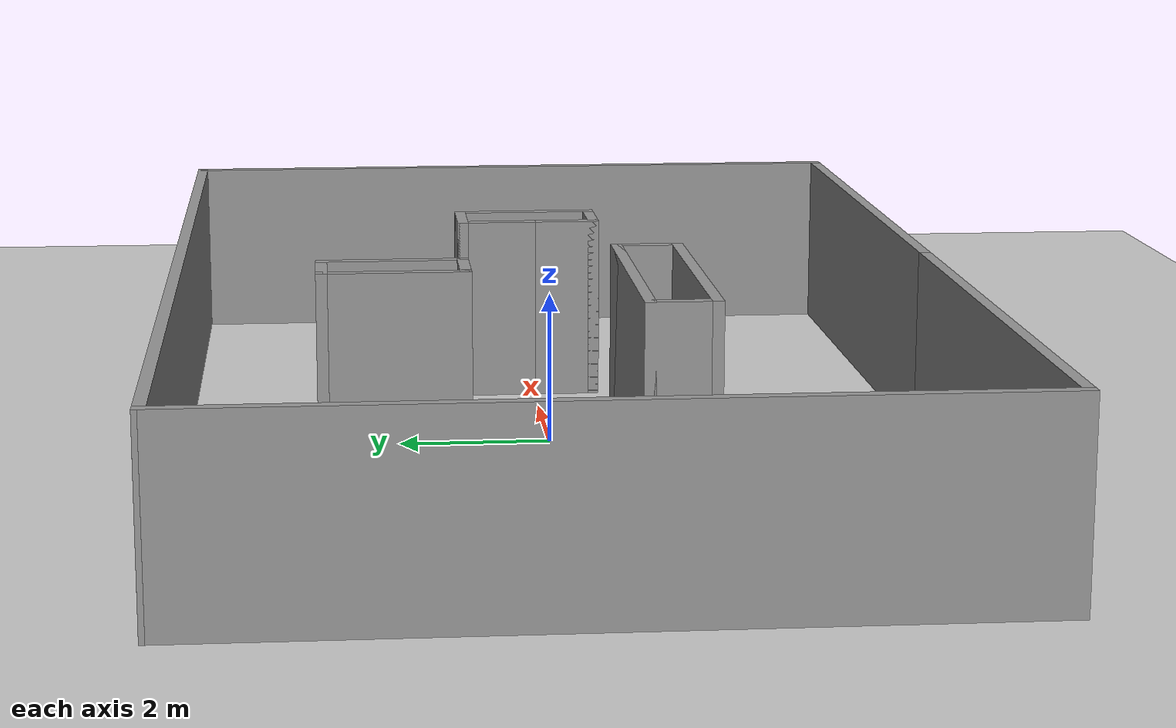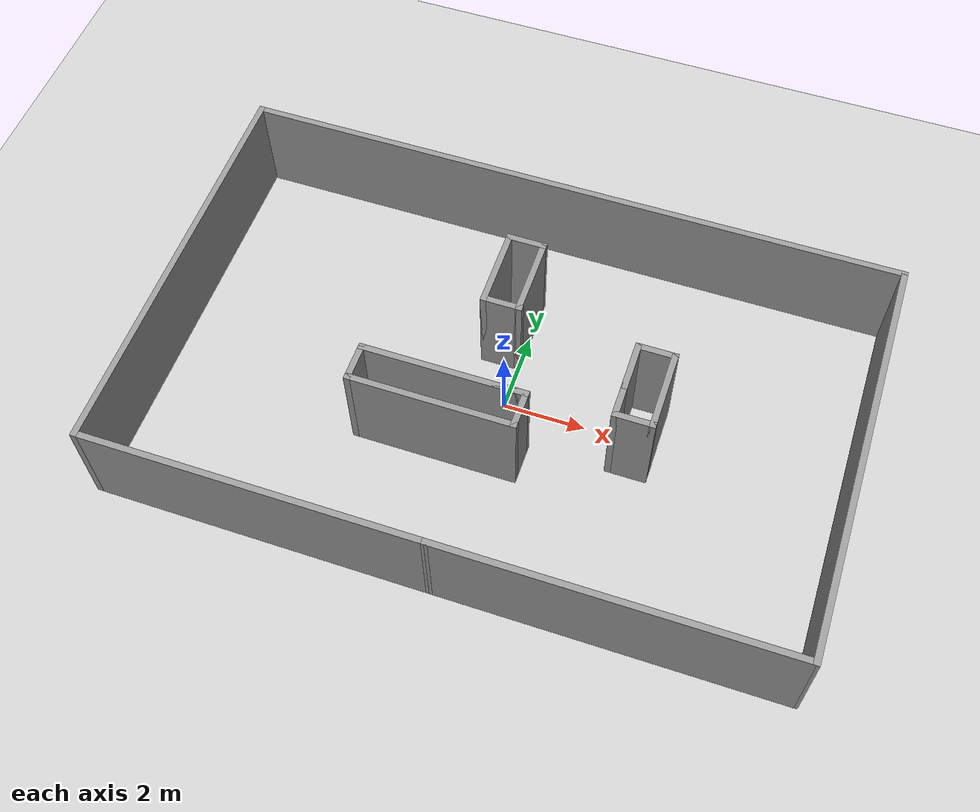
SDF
<sdf version="1.6">
 <world name="default">
  <light name="sun" type="directional">
   <pose>0 0 10 0 -0 0</pose>
   <diffuse>0.8 0.8 0.8 1</diffuse>
   <specular>0.2 0.2 0.2 1</specular>
   <attenuation>
    <range>1000</range>
    <constant>0.9</constant>
    <linear>0.01</linear>
    <quadratic>0.001</quadratic>
   </attenuation>
   <direction>-0.5 0.1 -0.9</direction>
  </light>
  <model name="ground_plane">
   <static>1</static>
   <link name="link">
    <collision name="collision">
     <geometry><plane><normal>0 0 1</normal><size>100 100</size></plane></geometry>
     <surface><friction><ode><mu>100</mu><mu2>50</mu2></ode></friction></surface>
    </collision>
    <visual name="visual">
     <cast_shadows>0</cast_shadows>
     <geometry><plane><normal>0 0 1</normal><size>100 100</size></plane></geometry>
     <material>
      <script><uri>file://media/materials/scripts/gazebo.material</uri><name>Gazebo/Grey</name></script>
     </material>
    </visual>
   </link>
  </model>
  <gravity>0 0 -9.8</gravity>
  <magnetic_field>6e-06 2.3e-05 -4.2e-05</magnetic_field>
  <atmosphere type="adiabatic"/>
  <physics name="default_physics" default="0" type="ode">
   <max_step_size>0.001</max_step_size>
   <real_time_factor>1</real_time_factor>
   <real_time_update_rate>1000</real_time_update_rate>
  </physics>
  <scene><ambient>0.4 0.4 0.4 1</ambient><background>0.7 0.7 0.7 1</background><shadows>1</shadows></scene>
  <spherical_coordinates>
   <surface_model>EARTH_WGS84</surface_model>
   <latitude_deg>0</latitude_deg>
   <longitude_deg>0</longitude_deg>
   <elevation>0</elevation>
   <heading_deg>0</heading_deg>
  </spherical_coordinates>
  <model name="playground_with_obstacle_v1">
   <pose>0.038013 -0.06669 0 0 -0 0</pose>
   <link name="Wall_11">
    <collision name="Wall_11_Collision">
     <geometry><box><size>2 0.15 2.5</size></box></geometry>
     <pose>0 0 1.25 0 -0 0</pose>
    </collision>
    <visual name="Wall_11_Visual">
     <pose>0 0 1.25 0 -0 0</pose>
     <geometry><box><size>2 0.15 2.5</size></box></geometry>
     <material>
      <script><uri>file://media/materials/scripts/gazebo.material</uri><name>Gazebo/Grey</name></script>
      <ambient>1 1 1 1</ambient>
     </material>
     <meta><layer>0</layer></meta>
    </visual>
    <pose>-0.072277 2.14169 0 0 -0 1.5708</pose>
   </link>
   <link name="Wall_13">
    <collision name="Wall_13_Collision">
     <geometry><box><size>8.26656 0.15 2.5</size></box></geometry>
     <pose>0 0 1.25 0 -0 0</pose>
    </collision>
    <visual name="Wall_13_Visual">
     <pose>0 0 1.25 0 -0 0</pose>
     <geometry><box><size>8.26656 0.15 2.5</size></box></geometry>
     <material>
      <script><uri>file://media/materials/scripts/gazebo.material</uri><name>Gazebo/Grey</name></script>
      <ambient>1 1 1 1</ambient>
     </material>
     <meta><layer>0</layer></meta>
    </visual>
    <pose>3.99996 -4.92496 0 0 -0 0.002038</pose>
   </link>
   <link name="Wall_16">
    <collision name="Wall_16_Collision">
     <geometry><box><size>10 0.15 2.5</size></box></geometry>
     <pose>0 0 1.25 0 -0 0</pose>
    </collision>
    <visual name="Wall_16_Visual">
     <pose>0 0 1.25 0 -0 0</pose>
     <geometry><box><size>10 0.15 2.5</size></box></geometry>
     <material>
      <script><uri>file://media/materials/scripts/gazebo.material</uri><name>Gazebo/Grey</name></script>
      <ambient>1 1 1 1</ambient>
     </material>
     <meta><layer>0</layer></meta>
    </visual>
    <pose>8.05823 0.008307 0 0 -0 1.5708</pose>
   </link>
   <link name="Wall_20">
    <collision name="Wall_20_Collision">
     <geometry><box><size>16.2665 0.15 2.5</size></box></geometry>
     <pose>0 0 1.25 0 -0 0</pose>
    </collision>
    <visual name="Wall_20_Visual">
     <pose>0 0 1.25 0 -0 0</pose>
     <geometry><box><size>16.2665 0.15 2.5</size></box></geometry>
     <material>
      <script><uri>file://media/materials/scripts/gazebo.material</uri><name>Gazebo/Grey</name></script>
      <ambient>1 1 1 1</ambient>
     </material>
     <meta><layer>0</layer></meta>
    </visual>
    <pose>-3.7e-05 4.92504 0 0 0 -3.14057</pose>
   </link>
   <link name="Wall_22">
    <collision name="Wall_22_Collision">
     <geometry><box><size>8 0.15 2.5</size></box></geometry>
     <pose>0 0 1.25 0 -0 0</pose>
    </collision>
    <visual name="Wall_22_Visual">
     <pose>0 0 1.25 0 -0 0</pose>
     <geometry><box><size>8 0.15 2.5</size></box></geometry>
     <material>
      <script><uri>file://media/materials/scripts/gazebo.material</uri><name>Gazebo/Grey</name></script>
      <ambient>1 1 1 1</ambient>
     </material>
     <meta><layer>0</layer></meta>
    </visual>
    <pose>-3.98331 -4.93323 0 0 -0 3.14159</pose>
   </link>
   <link name="Wall_24">
    <collision name="Wall_24_Collision">
     <geometry><box><size>10 0.15 2.5</size></box></geometry>
     <pose>0 0 1.25 0 -0 0</pose>
    </collision>
    <visual name="Wall_24_Visual">
     <pose>0 0 1.25 0 -0 0</pose>
     <geometry><box><size>10 0.15 2.5</size></box></geometry>
     <material>
      <script><uri>file://media/materials/scripts/gazebo.material</uri><name>Gazebo/Grey</name></script>
      <ambient>1 1 1 1</ambient>
     </material>
     <meta><layer>0</layer></meta>
    </visual>
    <pose>-8.05831 -0.008231 0 0 0 -1.5708</pose>
   </link>
   <link name="Wall_27">
    <collision name="Wall_27_Collision">
     <geometry><box><size>0.985736 0.15 2.5</size></box></geometry>
     <pose>0 0 1.25 0 -0 0</pose>
    </collision>
    <visual name="Wall_27_Visual">
     <pose>0 0 1.25 0 -0 0</pose>
     <geometry><box><size>0.985736 0.15 2.5</size></box></geometry>
     <material>
      <script><uri>file://media/materials/scripts/gazebo.material</uri><name>Gazebo/Grey</name></script>
      <ambient>1 1 1 1</ambient>
     </material>
     <meta><layer>0</layer></meta>
    </visual>
    <pose>-0.490145 3.06669 0 0 -0 3.14159</pose>
   </link>
   <link name="Wall_29">
    <collision name="Wall_29_Collision">
     <geometry><box><size>2 0.15 2.5</size></box></geometry>
     <pose>0 0 1.25 0 -0 0</pose>
    </collision>
    <visual name="Wall_29_Visual">
     <pose>0 0 1.25 0 -0 0</pose>
     <geometry><box><size>2 0.15 2.5</size></box></geometry>
     <material>
      <script><uri>file://media/materials/scripts/gazebo.material</uri><name>Gazebo/Grey</name></script>
      <ambient>1 1 1 1</ambient>
     </material>
     <meta><layer>0</layer></meta>
    </visual>
    <pose>-0.908013 2.14169 0 0 0 -1.5708</pose>
   </link>
   <link name="Wall_30">
    <collision name="Wall_30_Collision">
     <geometry><box><size>1 0.15 2.5</size></box></geometry>
     <pose>0 0 1.25 0 -0 0</pose>
    </collision>
    <visual name="Wall_30_Visual">
     <pose>0 0 1.25 0 -0 0</pose>
     <geometry><box><size>1 0.15 2.5</size></box></geometry>
     <material>
      <script><uri>file://media/materials/scripts/gazebo.material</uri><name>Gazebo/Grey</name></script>
      <ambient>1 1 1 1</ambient>
     </material>
     <meta><layer>0</layer></meta>
    </visual>
    <pose>-0.483012 1.21669 0 0 -0 0</pose>
   </link>
   <link name="Wall_32">
    <collision name="Wall_32_Collision">
     <geometry><box><size>1 0.15 2.5</size></box></geometry>
     <pose>0 0 1.25 0 -0 0</pose>
    </collision>
    <visual name="Wall_32_Visual">
     <pose>0 0 1.25 0 -0 0</pose>
     <geometry><box><size>1 0.15 2.5</size></box></geometry>
     <material>
      <script><uri>file://media/materials/scripts/gazebo.material</uri><name>Gazebo/Grey</name></script>
      <ambient>1 1 1 1</ambient>
     </material>
     <meta><layer>0</layer></meta>
    </visual>
    <pose>0.366987 -0.905182 0 0 -0 0</pose>
   </link>
   <link name="Wall_33">
    <collision name="Wall_33_Collision">
     <geometry><box><size>0.978128 0.15 2.5</size></box></geometry>
     <pose>0 0 1.25 0 -0 0</pose>
    </collision>
    <visual name="Wall_33_Visual">
     <pose>0 0 1.25 0 -0 0</pose>
     <geometry><box><size>0.978128 0.15 2.5</size></box></geometry>
     <material>
      <script><uri>file://media/materials/scripts/gazebo.material</uri><name>Gazebo/Grey</name></script>
      <ambient>1 1 1 1</ambient>
     </material>
     <meta><layer>0</layer></meta>
    </visual>
    <pose>0.791987 -1.31925 0 0 0 -1.5708</pose>
   </link>
   <link name="Wall_34">
    <collision name="Wall_34_Collision">
     <geometry><box><size>4 0.15 2.5</size></box></geometry>
     <pose>0 0 1.25 0 -0 0</pose>
    </collision>
    <visual name="Wall_34_Visual">
     <pose>0 0 1.25 0 -0 0</pose>
     <geometry><box><size>4 0.15 2.5</size></box></geometry>
     <material>
      <script><uri>file://media/materials/scripts/gazebo.material</uri><name>Gazebo/Grey</name></script>
      <ambient>1 1 1 1</ambient>
     </material>
     <meta><layer>0</layer></meta>
    </visual>
    <pose>-1.13301 -1.73331 0 0 -0 3.14159</pose>
   </link>
   <link name="Wall_35">
    <collision name="Wall_35_Collision">
     <geometry><box><size>0.978128 0.15 2.5</size></box></geometry>
     <pose>0 0 1.25 0 -0 0</pose>
    </collision>
    <visual name="Wall_35_Visual">
     <pose>0 0 1.25 0 -0 0</pose>
     <geometry><box><size>0.978128 0.15 2.5</size></box></geometry>
     <material>
      <script><uri>file://media/materials/scripts/gazebo.material</uri><name>Gazebo/Grey</name></script>
      <ambient>1 1 1 1</ambient>
     </material>
     <meta><layer>0</layer></meta>
    </visual>
    <pose>-3.05801 -1.31925 0 0 -0 1.5708</pose>
   </link>
   <link name="Wall_36">
    <collision name="Wall_36_Collision">
     <geometry><box><size>4 0.15 2.5</size></box></geometry>
     <pose>0 0 1.25 0 -0 0</pose>
    </collision>
    <visual name="Wall_36_Visual">
     <pose>0 0 1.25 0 -0 0</pose>
     <geometry><box><size>4 0.15 2.5</size></box></geometry>
     <material>
      <script><uri>file://media/materials/scripts/gazebo.material</uri><name>Gazebo/Grey</name></script>
      <ambient>1 1 1 1</ambient>
     </material>
     <meta><layer>0</layer></meta>
    </visual>
    <pose>-1.13301 -0.905182 0 0 -0 0</pose>
   </link>
   <link name="Wall_38">
    <collision name="Wall_38_Collision">
     <geometry><box><size>1.25 0.15 2.5</size></box></geometry>
     <pose>0 0 1.25 0 -0 0</pose>
    </collision>
    <visual name="Wall_38_Visual">
     <pose>0 0 1.25 0 -0 0</pose>
     <geometry><box><size>1.25 0.15 2.5</size></box></geometry>
     <material>
      <script><uri>file://media/materials/scripts/gazebo.material</uri><name>Gazebo/Grey</name></script>
      <ambient>1 1 1 1</ambient>
     </material>
     <meta><layer>0</layer></meta>
    </visual>
    <pose>2.77772 0.51669 0 0 -0 1.5708</pose>
   </link>
   <link name="Wall_39">
    <collision name="Wall_39_Collision">
     <geometry><box><size>1 0.15 2.5</size></box></geometry>
     <pose>0 0 1.25 0 -0 0</pose>
    </collision>
    <visual name="Wall_39_Visual">
     <pose>0 0 1.25 0 -0 0</pose>
     <geometry><box><size>1 0.15 2.5</size></box></geometry>
     <material>
      <script><uri>file://media/materials/scripts/gazebo.material</uri><name>Gazebo/Grey</name></script>
      <ambient>1 1 1 1</ambient>
     </material>
     <meta><layer>0</layer></meta>
    </visual>
    <pose>3.20272 1.06669 0 0 -0 0</pose>
   </link>
   <link name="Wall_40">
    <collision name="Wall_40_Collision">
     <geometry><box><size>2 0.15 2.5</size></box></geometry>
     <pose>0 0 1.25 0 -0 0</pose>
    </collision>
    <visual name="Wall_40_Visual">
     <pose>0 0 1.25 0 -0 0</pose>
     <geometry><box><size>2 0.15 2.5</size></box></geometry>
     <material>
      <script><uri>file://media/materials/scripts/gazebo.material</uri><name>Gazebo/Grey</name></script>
      <ambient>1 1 1 1</ambient>
     </material>
     <meta><layer>0</layer></meta>
    </visual>
    <pose>3.62772 0.14169 0 0 0 -1.5708</pose>
   </link>
   <link name="Wall_41">
    <collision name="Wall_41_Collision">
     <geometry><box><size>1 0.15 2.5</size></box></geometry>
     <pose>0 0 1.25 0 -0 0</pose>
    </collision>
    <visual name="Wall_41_Visual">
     <pose>0 0 1.25 0 -0 0</pose>
     <geometry><box><size>1 0.15 2.5</size></box></geometry>
     <material>
      <script><uri>file://media/materials/scripts/gazebo.material</uri><name>Gazebo/Grey</name></script>
      <ambient>1 1 1 1</ambient>
     </material>
     <meta><layer>0</layer></meta>
    </visual>
    <pose>3.20272 -0.78331 0 0 -0 3.14159</pose>
   </link>
   <link name="Wall_42">
    <collision name="Wall_42_Collision">
     <geometry><box><size>0.9 0.15 2.5</size></box></geometry>
     <pose>0 0 1.25 0 -0 0</pose>
    </collision>
    <visual name="Wall_42_Visual">
     <pose>0 0 1.25 0 -0 0</pose>
     <geometry><box><size>0.9 0.15 2.5</size></box></geometry>
     <material>
      <script><uri>file://media/materials/scripts/gazebo.material</uri><name>Gazebo/Grey</name></script>
      <ambient>1 1 1 1</ambient>
     </material>
     <meta><layer>0</layer></meta>
    </visual>
    <pose>2.77772 -0.40831 0 0 -0 1.5708</pose>
   </link>
   <static>1</static>
  </model>
 </world>
</sdf>
